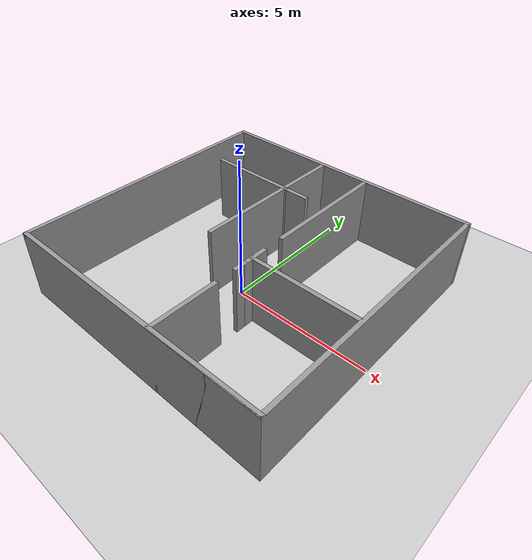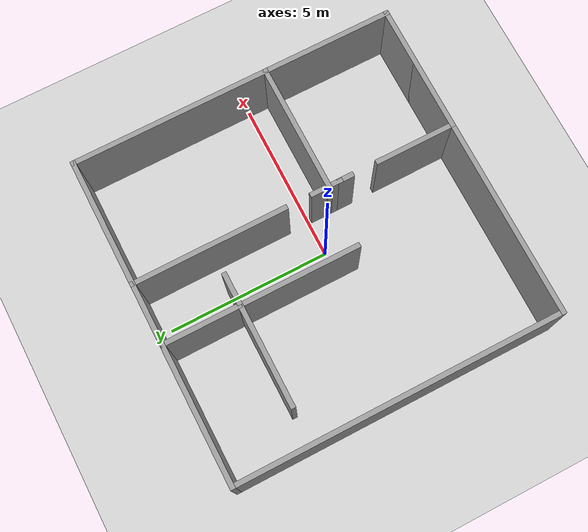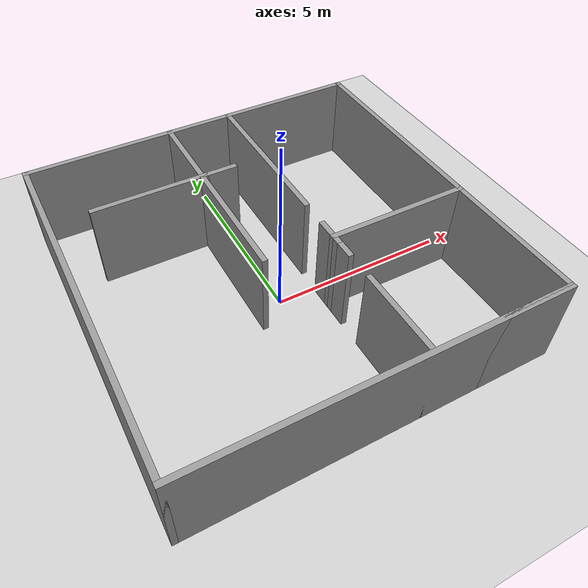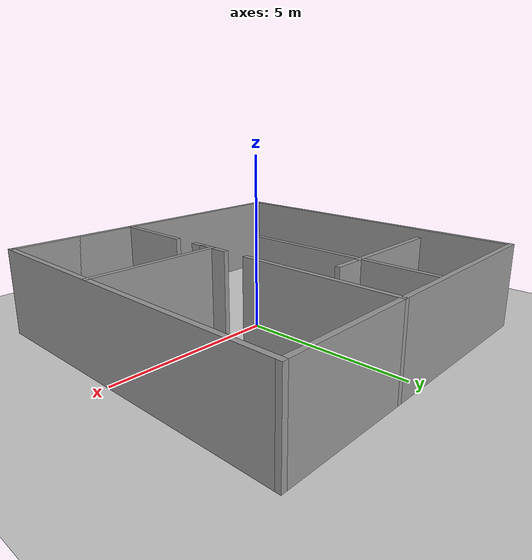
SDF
<sdf version="1.6">
 <world name="default">
  <light name="sun" type="directional">
   <pose>0 0 10 0 -0 0</pose>
   <diffuse>0.8 0.8 0.8 1</diffuse>
   <specular>0.1 0.1 0.1 1</specular>
   <attenuation>
    <range>1000</range>
    <constant>0.9</constant>
    <linear>0.01</linear>
    <quadratic>0.001</quadratic>
   </attenuation>
   <direction>-0.5 0.5 -1</direction>
  </light>
  <model name="ground_plane">
   <static>1</static>
   <link name="link">
    <collision name="collision">
     <geometry><plane><normal>0 0 1</normal><size>100 100</size></plane></geometry>
     <surface><friction><ode><mu>100</mu><mu2>50</mu2></ode></friction></surface>
    </collision>
    <visual name="visual">
     <cast_shadows>0</cast_shadows>
     <geometry><plane><normal>0 0 1</normal><size>100 100</size></plane></geometry>
     <material>
      <script><uri>file://media/materials/scripts/gazebo.material</uri><name>Gazebo/Grey</name></script>
     </material>
    </visual>
   </link>
  </model>
  <gravity>0 0 -9.8</gravity>
  <magnetic_field>6e-06 2.3e-05 -4.2e-05</magnetic_field>
  <atmosphere type="adiabatic"/>
  <physics name="default_physics" default="0" type="ode">
   <max_step_size>0.001</max_step_size>
   <real_time_factor>1</real_time_factor>
   <real_time_update_rate>1000</real_time_update_rate>
  </physics>
  <scene><ambient>0.4 0.4 0.4 1</ambient><background>0.7 0.7 0.7 1</background><shadows>1</shadows></scene>
  <spherical_coordinates>
   <surface_model>EARTH_WGS84</surface_model>
   <latitude_deg>0</latitude_deg>
   <longitude_deg>0</longitude_deg>
   <elevation>0</elevation>
   <heading_deg>0</heading_deg>
  </spherical_coordinates>
  <model name="home">
   <pose>0.034015 0.375537 0 0 -0 0</pose>
   <link name="Wall_11">
    <collision name="Wall_11_Collision">
     <geometry><box><size>4 0.15 2.5</size></box></geometry>
     <pose>0 0 1.25 0 -0 0</pose>
    </collision>
    <visual name="Wall_11_Visual">
     <pose>0 0 1.25 0 -0 0</pose>
     <geometry><box><size>4 0.15 2.5</size></box></geometry>
     <material>
      <script><uri>file://media/materials/scripts/gazebo.material</uri><name>Gazebo/Grey</name></script>
      <ambient>1 1 1 1</ambient>
     </material>
     <meta><layer>0</layer></meta>
    </visual>
    <pose>3 -4.925 0 0 -0 3.14159</pose>
   </link>
   <link name="Wall_12">
    <collision name="Wall_12_Collision">
     <geometry><box><size>2.5 0.15 2.5</size></box></geometry>
     <pose>0 0 1.25 0 -0 0</pose>
    </collision>
    <visual name="Wall_12_Visual">
     <pose>0 0 1.25 0 -0 0</pose>
     <geometry><box><size>2.5 0.15 2.5</size></box></geometry>
     <material>
      <script><uri>file://media/materials/scripts/gazebo.material</uri><name>Gazebo/Grey</name></script>
      <ambient>1 1 1 1</ambient>
     </material>
     <meta><layer>0</layer></meta>
    </visual>
    <pose>1.075 -3.75 0 0 -0 1.5708</pose>
   </link>
   <link name="Wall_14">
    <collision name="Wall_14_Collision">
     <geometry><box><size>0.5 0.15 2.5</size></box></geometry>
     <pose>0 0 1.25 0 -0 0</pose>
    </collision>
    <visual name="Wall_14_Visual">
     <pose>0 0 1.25 0 -0 0</pose>
     <geometry><box><size>0.5 0.15 2.5</size></box></geometry>
     <material>
      <script><uri>file://media/materials/scripts/gazebo.material</uri><name>Gazebo/Grey</name></script>
      <ambient>1 1 1 1</ambient>
     </material>
     <meta><layer>0</layer></meta>
    </visual>
    <pose>1.075 -1.55 0 0 -0 1.5708</pose>
   </link>
   <link name="Wall_15">
    <collision name="Wall_15_Collision">
     <geometry><box><size>1 0.15 2.5</size></box></geometry>
     <pose>0 0 1.25 0 -0 0</pose>
    </collision>
    <visual name="Wall_15_Visual">
     <pose>0 0 1.25 0 -0 0</pose>
     <geometry><box><size>1 0.15 2.5</size></box></geometry>
     <material>
      <script><uri>file://media/materials/scripts/gazebo.material</uri><name>Gazebo/Grey</name></script>
      <ambient>1 1 1 1</ambient>
     </material>
     <meta><layer>0</layer></meta>
    </visual>
    <pose>1.075 -0.95 0 0 -0 1.5708</pose>
   </link>
   <link name="Wall_17">
    <collision name="Wall_17_Collision">
     <geometry><box><size>4.75 0.15 2.5</size></box></geometry>
     <pose>0 0 1.25 0 -0 0</pose>
    </collision>
    <visual name="Wall_17_Visual">
     <pose>0 0 1.25 0 -0 0</pose>
     <geometry><box><size>4.75 0.15 2.5</size></box></geometry>
     <material>
      <script><uri>file://media/materials/scripts/gazebo.material</uri><name>Gazebo/Grey</name></script>
      <ambient>1 1 1 1</ambient>
     </material>
     <meta><layer>0</layer></meta>
    </visual>
    <pose>1.075 2.625 0 0 -0 1.5708</pose>
   </link>
   <link name="Wall_26">
    <collision name="Wall_26_Collision">
     <geometry><box><size>4 0.15 2.5</size></box></geometry>
     <pose>0 0 1.25 0 -0 0</pose>
    </collision>
    <visual name="Wall_26_Visual">
     <pose>0 0 1.25 0 -0 0</pose>
     <geometry><box><size>4 0.15 2.5</size></box></geometry>
     <material>
      <script><uri>file://media/materials/scripts/gazebo.material</uri><name>Gazebo/Grey</name></script>
      <ambient>1 1 1 1</ambient>
     </material>
     <meta><layer>0</layer></meta>
    </visual>
    <pose>2.99861 -1.03229 0 0 -0 0</pose>
   </link>
   <link name="Wall_29">
    <collision name="Wall_29_Collision">
     <geometry><box><size>6 0.15 2.5</size></box></geometry>
     <pose>0 0 1.25 0 -0 0</pose>
    </collision>
    <visual name="Wall_29_Visual">
     <pose>0 0 1.25 0 -0 0</pose>
     <geometry><box><size>6 0.15 2.5</size></box></geometry>
     <material>
      <script><uri>file://media/materials/scripts/gazebo.material</uri><name>Gazebo/Grey</name></script>
      <ambient>1 1 1 1</ambient>
     </material>
     <meta><layer>0</layer></meta>
    </visual>
    <pose>-0.786107 1.99464 0 0 0 -1.5708</pose>
   </link>
   <link name="Wall_31">
    <collision name="Wall_31_Collision">
     <geometry><box><size>1 0.15 2.5</size></box></geometry>
     <pose>0 0 1.25 0 -0 0</pose>
    </collision>
    <visual name="Wall_31_Visual">
     <pose>0 0 1.25 0 -0 0</pose>
     <geometry><box><size>1 0.15 2.5</size></box></geometry>
     <material>
      <script><uri>file://media/materials/scripts/gazebo.material</uri><name>Gazebo/Grey</name></script>
      <ambient>1 1 1 1</ambient>
     </material>
     <meta><layer>0</layer></meta>
    </visual>
    <pose>-0.278135 2.61718 0 0 -0 0</pose>
   </link>
   <link name="Wall_33">
    <collision name="Wall_33_Collision">
     <geometry><box><size>3.25 0.15 2.5</size></box></geometry>
     <pose>0 0 1.25 0 -0 0</pose>
    </collision>
    <visual name="Wall_33_Visual">
     <pose>0 0 1.25 0 -0 0</pose>
     <geometry><box><size>3.25 0.15 2.5</size></box></geometry>
     <material>
      <script><uri>file://media/materials/scripts/gazebo.material</uri><name>Gazebo/Grey</name></script>
      <ambient>1 1 1 1</ambient>
     </material>
     <meta><layer>0</layer></meta>
    </visual>
    <pose>-2.25313 2.61718 0 0 -0 3.14159</pose>
   </link>
   <link name="Wall_6">
    <collision name="Wall_6_Collision">
     <geometry><box><size>10 0.15 2.5</size></box></geometry>
     <pose>0 0 1.25 0 -0 0</pose>
    </collision>
    <visual name="Wall_6_Visual">
     <pose>0 0 1.25 0 -0 0</pose>
     <geometry><box><size>10 0.15 2.5</size></box></geometry>
     <material>
      <script><uri>file://media/materials/scripts/gazebo.material</uri><name>Gazebo/Grey</name></script>
      <ambient>1 1 1 1</ambient>
     </material>
     <meta><layer>0</layer></meta>
    </visual>
    <pose>0 -4.925 0 0 -0 0</pose>
   </link>
   <link name="Wall_7">
    <collision name="Wall_7_Collision">
     <geometry><box><size>10 0.15 2.5</size></box></geometry>
     <pose>0 0 1.25 0 -0 0</pose>
    </collision>
    <visual name="Wall_7_Visual">
     <pose>0 0 1.25 0 -0 0</pose>
     <geometry><box><size>10 0.15 2.5</size></box></geometry>
     <material>
      <script><uri>file://media/materials/scripts/gazebo.material</uri><name>Gazebo/Grey</name></script>
      <ambient>1 1 1 1</ambient>
     </material>
     <meta><layer>0</layer></meta>
    </visual>
    <pose>4.925 0 0 0 -0 1.5708</pose>
   </link>
   <link name="Wall_8">
    <collision name="Wall_8_Collision">
     <geometry><box><size>10 0.15 2.5</size></box></geometry>
     <pose>0 0 1.25 0 -0 0</pose>
    </collision>
    <visual name="Wall_8_Visual">
     <pose>0 0 1.25 0 -0 0</pose>
     <geometry><box><size>10 0.15 2.5</size></box></geometry>
     <material>
      <script><uri>file://media/materials/scripts/gazebo.material</uri><name>Gazebo/Grey</name></script>
      <ambient>1 1 1 1</ambient>
     </material>
     <meta><layer>0</layer></meta>
    </visual>
    <pose>0 4.925 0 0 -0 3.14159</pose>
   </link>
   <link name="Wall_9">
    <collision name="Wall_9_Collision">
     <geometry><box><size>10 0.15 2.5</size></box></geometry>
     <pose>0 0 1.25 0 -0 0</pose>
    </collision>
    <visual name="Wall_9_Visual">
     <pose>0 0 1.25 0 -0 0</pose>
     <geometry><box><size>10 0.15 2.5</size></box></geometry>
     <material>
      <script><uri>file://media/materials/scripts/gazebo.material</uri><name>Gazebo/Grey</name></script>
      <ambient>1 1 1 1</ambient>
     </material>
     <meta><layer>0</layer></meta>
    </visual>
    <pose>-4.925 0 0 0 0 -1.5708</pose>
   </link>
   <static>1</static>
  </model>
 </world>
</sdf>
